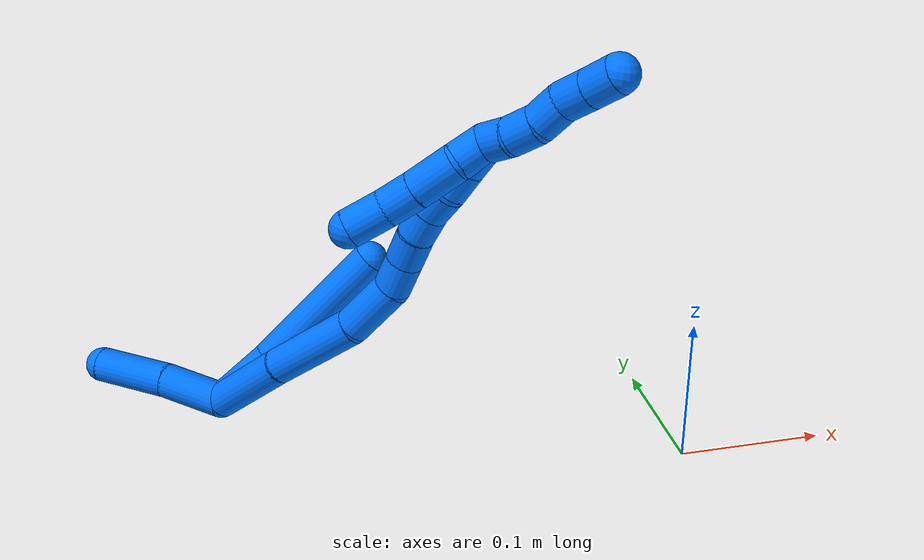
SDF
<sdf version="1.7">
 <world name="default">
  <model name="14">
   <static>0</static>
   <link name="14">
    <collision name="collision-cylinder-e_1_2_8">
     <pose>0.015268 0.006304 0.015556 -0.385005 0.738118 -0.150495</pose>
     <geometry><cylinder><radius>0.0125</radius><length>0.045381</length></cylinder></geometry>
     <surface>
      <friction><ode><mu>1.16</mu><mu2>1.16</mu2><slip1>0</slip1><slip2>0</slip2></ode></friction>
      <contact><ode><kp>1e+06</kp><kd>1</kd><max_vel>0</max_vel><min_depth>0.001</min_depth></ode></contact>
     </surface>
    </collision>
    <visual name="visual-cylinder-e_1_2_8">
     <pose>0.015268 0.006304 0.015556 -0.385005 0.738118 -0.150495</pose>
     <geometry><cylinder><radius>0.0125</radius><length>0.045381</length></cylinder></geometry>
     <material><ambient>0 0.462745 1 1</ambient></material>
    </visual>
    <collision name="collision-cylinder-e_2_8_6">
     <pose>0.061583 0.015494 0.073113 -0.06861 0.635426 -0.02257</pose>
     <geometry><cylinder><radius>0.0125</radius><length>0.104619</length></cylinder></geometry>
     <surface>
      <friction><ode><mu>1.16</mu><mu2>1.16</mu2><slip1>0</slip1><slip2>0</slip2></ode></friction>
      <contact><ode><kp>1e+06</kp><kd>1</kd><max_vel>0</max_vel><min_depth>0.001</min_depth></ode></contact>
     </surface>
    </collision>
    <visual name="visual-cylinder-e_2_8_6">
     <pose>0.061583 0.015494 0.073113 -0.06861 0.635426 -0.02257</pose>
     <geometry><cylinder><radius>0.0125</radius><length>0.104619</length></cylinder></geometry>
     <material><ambient>0 0.462745 1 1</ambient></material>
    </visual>
    <collision name="collision-cylinder-e_1_2_9">
     <pose>-0.021033 0.009379 0.000275 -1.54152 -1.15119 1.12461</pose>
     <geometry><cylinder><radius>0.0125</radius><length>0.046063</length></cylinder></geometry>
     <surface>
      <friction><ode><mu>1.16</mu><mu2>1.16</mu2><slip1>0</slip1><slip2>0</slip2></ode></friction>
      <contact><ode><kp>1e+06</kp><kd>1</kd><max_vel>0</max_vel><min_depth>0.001</min_depth></ode></contact>
     </surface>
    </collision>
    <visual name="visual-cylinder-e_1_2_9">
     <pose>-0.021033 0.009379 0.000275 -1.54152 -1.15119 1.12461</pose>
     <geometry><cylinder><radius>0.0125</radius><length>0.046063</length></cylinder></geometry>
     <material><ambient>0 0.462745 1 1</ambient></material>
    </visual>
    <collision name="collision-cylinder-e_2_9_5">
     <pose>-0.066907 0.029066 -0.00146 -1.76327 -1.17082 1.35508</pose>
     <geometry><cylinder><radius>0.0125</radius><length>0.053937</length></cylinder></geometry>
     <surface>
      <friction><ode><mu>1.16</mu><mu2>1.16</mu2><slip1>0</slip1><slip2>0</slip2></ode></friction>
      <contact><ode><kp>1e+06</kp><kd>1</kd><max_vel>0</max_vel><min_depth>0.001</min_depth></ode></contact>
     </surface>
    </collision>
    <visual name="visual-cylinder-e_2_9_5">
     <pose>-0.066907 0.029066 -0.00146 -1.76327 -1.17082 1.35508</pose>
     <geometry><cylinder><radius>0.0125</radius><length>0.053937</length></cylinder></geometry>
     <material><ambient>0 0.462745 1 1</ambient></material>
    </visual>
    <collision name="collision-cylinder-e_1_2_10">
     <pose>0.019488 -0.011671 0.022836 0.472457 0.64982 0.16182</pose>
     <geometry><cylinder><radius>0.0125</radius><length>0.06442</length></cylinder></geometry>
     <surface>
      <friction><ode><mu>1.16</mu><mu2>1.16</mu2><slip1>0</slip1><slip2>0</slip2></ode></friction>
      <contact><ode><kp>1e+06</kp><kd>1</kd><max_vel>0</max_vel><min_depth>0.001</min_depth></ode></contact>
     </surface>
    </collision>
    <visual name="visual-cylinder-e_1_2_10">
     <pose>0.019488 -0.011671 0.022836 0.472457 0.64982 0.16182</pose>
     <geometry><cylinder><radius>0.0125</radius><length>0.06442</length></cylinder></geometry>
     <material><ambient>0 0.462745 1 1</ambient></material>
    </visual>
    <collision name="collision-cylinder-e_2_10_11">
     <pose>0.062148 -0.033512 0.069194 0.4081 0.735103 0.15902</pose>
     <geometry><cylinder><radius>0.0125</radius><length>0.069098</length></cylinder></geometry>
     <surface>
      <friction><ode><mu>1.16</mu><mu2>1.16</mu2><slip1>0</slip1><slip2>0</slip2></ode></friction>
      <contact><ode><kp>1e+06</kp><kd>1</kd><max_vel>0</max_vel><min_depth>0.001</min_depth></ode></contact>
     </surface>
    </collision>
    <visual name="visual-cylinder-e_2_10_11">
     <pose>0.062148 -0.033512 0.069194 0.4081 0.735103 0.15902</pose>
     <geometry><cylinder><radius>0.0125</radius><length>0.069098</length></cylinder></geometry>
     <material><ambient>0 0.462745 1 1</ambient></material>
    </visual>
    <collision name="collision-cylinder-e_3_11_12">
     <pose>0.096523 -0.046758 0.109717 0.178968 0.575384 0.053086</pose>
     <geometry><cylinder><radius>0.0125</radius><length>0.041183</length></cylinder></geometry>
     <surface>
      <friction><ode><mu>1.16</mu><mu2>1.16</mu2><slip1>0</slip1><slip2>0</slip2></ode></friction>
      <contact><ode><kp>1e+06</kp><kd>1</kd><max_vel>0</max_vel><min_depth>0.001</min_depth></ode></contact>
     </surface>
    </collision>
    <visual name="visual-cylinder-e_3_11_12">
     <pose>0.096523 -0.046758 0.109717 0.178968 0.575384 0.053086</pose>
     <geometry><cylinder><radius>0.0125</radius><length>0.041183</length></cylinder></geometry>
     <material><ambient>0 0.462745 1 1</ambient></material>
    </visual>
    <collision name="collision-cylinder-e_4_12_13">
     <pose>0.110454 -0.051331 0.137554 0.137339 0.244153 0.016876</pose>
     <geometry><cylinder><radius>0.0125</radius><length>0.022549</length></cylinder></geometry>
     <surface>
      <friction><ode><mu>1.16</mu><mu2>1.16</mu2><slip1>0</slip1><slip2>0</slip2></ode></friction>
      <contact><ode><kp>1e+06</kp><kd>1</kd><max_vel>0</max_vel><min_depth>0.001</min_depth></ode></contact>
     </surface>
    </collision>
    <visual name="visual-cylinder-e_4_12_13">
     <pose>0.110454 -0.051331 0.137554 0.137339 0.244153 0.016876</pose>
     <geometry><cylinder><radius>0.0125</radius><length>0.022549</length></cylinder></geometry>
     <material><ambient>0 0.462745 1 1</ambient></material>
    </visual>
    <collision name="collision-cylinder-e_5_13_14">
     <pose>0.115471 -0.055779 0.158787 0.276512 0.208957 0.029179</pose>
     <geometry><cylinder><radius>0.0125</radius><length>0.022093</length></cylinder></geometry>
     <surface>
      <friction><ode><mu>1.16</mu><mu2>1.16</mu2><slip1>0</slip1><slip2>0</slip2></ode></friction>
      <contact><ode><kp>1e+06</kp><kd>1</kd><max_vel>0</max_vel><min_depth>0.001</min_depth></ode></contact>
     </surface>
    </collision>
    <visual name="visual-cylinder-e_5_13_14">
     <pose>0.115471 -0.055779 0.158787 0.276512 0.208957 0.029179</pose>
     <geometry><cylinder><radius>0.0125</radius><length>0.022093</length></cylinder></geometry>
     <material><ambient>0 0.462745 1 1</ambient></material>
    </visual>
    <collision name="collision-cylinder-e_6_14_15">
     <pose>0.120874 -0.060779 0.17851 0.216406 0.315018 0.034502</pose>
     <geometry><cylinder><radius>0.0125</radius><length>0.020089</length></cylinder></geometry>
     <surface>
      <friction><ode><mu>1.16</mu><mu2>1.16</mu2><slip1>0</slip1><slip2>0</slip2></ode></friction>
      <contact><ode><kp>1e+06</kp><kd>1</kd><max_vel>0</max_vel><min_depth>0.001</min_depth></ode></contact>
     </surface>
    </collision>
    <visual name="visual-cylinder-e_6_14_15">
     <pose>0.120874 -0.060779 0.17851 0.216406 0.315018 0.034502</pose>
     <geometry><cylinder><radius>0.0125</radius><length>0.020089</length></cylinder></geometry>
     <material><ambient>0 0.462745 1 1</ambient></material>
    </visual>
    <collision name="collision-cylinder-e_7_15_16">
     <pose>0.128262 -0.066381 0.196488 0.389555 0.42882 0.085865</pose>
     <geometry><cylinder><radius>0.0125</radius><length>0.020565</length></cylinder></geometry>
     <surface>
      <friction><ode><mu>1.16</mu><mu2>1.16</mu2><slip1>0</slip1><slip2>0</slip2></ode></friction>
      <contact><ode><kp>1e+06</kp><kd>1</kd><max_vel>0</max_vel><min_depth>0.001</min_depth></ode></contact>
     </surface>
    </collision>
    <visual name="visual-cylinder-e_7_15_16">
     <pose>0.128262 -0.066381 0.196488 0.389555 0.42882 0.085865</pose>
     <geometry><cylinder><radius>0.0125</radius><length>0.020565</length></cylinder></geometry>
     <material><ambient>0 0.462745 1 1</ambient></material>
    </visual>
    <collision name="collision-cylinder-e_8_16_17">
     <pose>0.136966 -0.070868 0.214057 0.104525 0.458721 0.024424</pose>
     <geometry><cylinder><radius>0.0125</radius><length>0.02</length></cylinder></geometry>
     <surface>
      <friction><ode><mu>1.16</mu><mu2>1.16</mu2><slip1>0</slip1><slip2>0</slip2></ode></friction>
      <contact><ode><kp>1e+06</kp><kd>1</kd><max_vel>0</max_vel><min_depth>0.001</min_depth></ode></contact>
     </surface>
    </collision>
    <visual name="visual-cylinder-e_8_16_17">
     <pose>0.136966 -0.070868 0.214057 0.104525 0.458721 0.024424</pose>
     <geometry><cylinder><radius>0.0125</radius><length>0.02</length></cylinder></geometry>
     <material><ambient>0 0.462745 1 1</ambient></material>
    </visual>
    <collision name="collision-cylinder-e_9_17_1">
     <pose>0.145629 -0.074106 0.231737 0.256848 0.437243 0.057365</pose>
     <geometry><cylinder><radius>0.0125</radius><length>0.020003</length></cylinder></geometry>
     <surface>
      <friction><ode><mu>1.16</mu><mu2>1.16</mu2><slip1>0</slip1><slip2>0</slip2></ode></friction>
      <contact><ode><kp>1e+06</kp><kd>1</kd><max_vel>0</max_vel><min_depth>0.001</min_depth></ode></contact>
     </surface>
    </collision>
    <visual name="visual-cylinder-e_9_17_1">
     <pose>0.145629 -0.074106 0.231737 0.256848 0.437243 0.057365</pose>
     <geometry><cylinder><radius>0.0125</radius><length>0.020003</length></cylinder></geometry>
     <material><ambient>0 0.462745 1 1</ambient></material>
    </visual>
    <collision name="collision-cylinder-e_1_1_18">
     <pose>0.142177 -0.078128 0.23409 2.87936 -0.858531 -2.5806</pose>
     <geometry><cylinder><radius>0.0125</radius><length>0.02031</length></cylinder></geometry>
     <surface>
      <friction><ode><mu>1.16</mu><mu2>1.16</mu2><slip1>0</slip1><slip2>0</slip2></ode></friction>
      <contact><ode><kp>1e+06</kp><kd>1</kd><max_vel>0</max_vel><min_depth>0.001</min_depth></ode></contact>
     </surface>
    </collision>
    <visual name="visual-cylinder-e_1_1_18">
     <pose>0.142177 -0.078128 0.23409 2.87936 -0.858531 -2.5806</pose>
     <geometry><cylinder><radius>0.0125</radius><length>0.02031</length></cylinder></geometry>
     <material><ambient>0 0.462745 1 1</ambient></material>
    </visual>
    <collision name="collision-cylinder-e_2_18_19">
     <pose>0.123707 -0.078535 0.21694 -3.01993 -0.783722 2.84891</pose>
     <geometry><cylinder><radius>0.0125</radius><length>0.030552</length></cylinder></geometry>
     <surface>
      <friction><ode><mu>1.16</mu><mu2>1.16</mu2><slip1>0</slip1><slip2>0</slip2></ode></friction>
      <contact><ode><kp>1e+06</kp><kd>1</kd><max_vel>0</max_vel><min_depth>0.001</min_depth></ode></contact>
     </surface>
    </collision>
    <visual name="visual-cylinder-e_2_18_19">
     <pose>0.123707 -0.078535 0.21694 -3.01993 -0.783722 2.84891</pose>
     <geometry><cylinder><radius>0.0125</radius><length>0.030552</length></cylinder></geometry>
     <material><ambient>0 0.462745 1 1</ambient></material>
    </visual>
    <collision name="collision-cylinder-e_3_19_20">
     <pose>0.10467 -0.07599 0.198602 -2.98083 -0.820273 2.7752</pose>
     <geometry><cylinder><radius>0.0125</radius><length>0.022572</length></cylinder></geometry>
     <surface>
      <friction><ode><mu>1.16</mu><mu2>1.16</mu2><slip1>0</slip1><slip2>0</slip2></ode></friction>
      <contact><ode><kp>1e+06</kp><kd>1</kd><max_vel>0</max_vel><min_depth>0.001</min_depth></ode></contact>
     </surface>
    </collision>
    <visual name="visual-cylinder-e_3_19_20">
     <pose>0.10467 -0.07599 0.198602 -2.98083 -0.820273 2.7752</pose>
     <geometry><cylinder><radius>0.0125</radius><length>0.022572</length></cylinder></geometry>
     <material><ambient>0 0.462745 1 1</ambient></material>
    </visual>
    <collision name="collision-cylinder-e_4_20_4">
     <pose>0.085754 -0.075756 0.183146 3.01521 -0.931762 -2.89121</pose>
     <geometry><cylinder><radius>0.0125</radius><length>0.026565</length></cylinder></geometry>
     <surface>
      <friction><ode><mu>1.16</mu><mu2>1.16</mu2><slip1>0</slip1><slip2>0</slip2></ode></friction>
      <contact><ode><kp>1e+06</kp><kd>1</kd><max_vel>0</max_vel><min_depth>0.001</min_depth></ode></contact>
     </surface>
    </collision>
    <visual name="visual-cylinder-e_4_20_4">
     <pose>0.085754 -0.075756 0.183146 3.01521 -0.931762 -2.89121</pose>
     <geometry><cylinder><radius>0.0125</radius><length>0.026565</length></cylinder></geometry>
     <material><ambient>0 0.462745 1 1</ambient></material>
    </visual>
    <collision name="collision-cylinder-e_1_1_21">
     <pose>0.156517 -0.08204 0.2454 0.854841 0.727953 0.343625</pose>
     <geometry><cylinder><radius>0.0125</radius><length>0.02</length></cylinder></geometry>
     <surface>
      <friction><ode><mu>1.16</mu><mu2>1.16</mu2><slip1>0</slip1><slip2>0</slip2></ode></friction>
      <contact><ode><kp>1e+06</kp><kd>1</kd><max_vel>0</max_vel><min_depth>0.001</min_depth></ode></contact>
     </surface>
    </collision>
    <visual name="visual-cylinder-e_1_1_21">
     <pose>0.156517 -0.08204 0.2454 0.854841 0.727953 0.343625</pose>
     <geometry><cylinder><radius>0.0125</radius><length>0.02</length></cylinder></geometry>
     <material><ambient>0 0.462745 1 1</ambient></material>
    </visual>
    <collision name="collision-cylinder-e_2_21_22">
     <pose>0.17014 -0.091422 0.256413 0.550268 0.771105 0.228151</pose>
     <geometry><cylinder><radius>0.0125</radius><length>0.02</length></cylinder></geometry>
     <surface>
      <friction><ode><mu>1.16</mu><mu2>1.16</mu2><slip1>0</slip1><slip2>0</slip2></ode></friction>
      <contact><ode><kp>1e+06</kp><kd>1</kd><max_vel>0</max_vel><min_depth>0.001</min_depth></ode></contact>
     </surface>
    </collision>
    <visual name="visual-cylinder-e_2_21_22">
     <pose>0.17014 -0.091422 0.256413 0.550268 0.771105 0.228151</pose>
     <geometry><cylinder><radius>0.0125</radius><length>0.02</length></cylinder></geometry>
     <material><ambient>0 0.462745 1 1</ambient></material>
    </visual>
    <collision name="collision-cylinder-e_3_22_23">
     <pose>0.18274 -0.097286 0.270515 0.25867 0.598125 0.080155</pose>
     <geometry><cylinder><radius>0.0125</radius><length>0.02</length></cylinder></geometry>
     <surface>
      <friction><ode><mu>1.16</mu><mu2>1.16</mu2><slip1>0</slip1><slip2>0</slip2></ode></friction>
      <contact><ode><kp>1e+06</kp><kd>1</kd><max_vel>0</max_vel><min_depth>0.001</min_depth></ode></contact>
     </surface>
    </collision>
    <visual name="visual-cylinder-e_3_22_23">
     <pose>0.18274 -0.097286 0.270515 0.25867 0.598125 0.080155</pose>
     <geometry><cylinder><radius>0.0125</radius><length>0.02</length></cylinder></geometry>
     <material><ambient>0 0.462745 1 1</ambient></material>
    </visual>
    <collision name="collision-cylinder-e_4_23_24">
     <pose>0.19469 -0.104068 0.28469 0.646466 0.684033 0.23739</pose>
     <geometry><cylinder><radius>0.0125</radius><length>0.02</length></cylinder></geometry>
     <surface>
      <friction><ode><mu>1.16</mu><mu2>1.16</mu2><slip1>0</slip1><slip2>0</slip2></ode></friction>
      <contact><ode><kp>1e+06</kp><kd>1</kd><max_vel>0</max_vel><min_depth>0.001</min_depth></ode></contact>
     </surface>
    </collision>
    <visual name="visual-cylinder-e_4_23_24">
     <pose>0.19469 -0.104068 0.28469 0.646466 0.684033 0.23739</pose>
     <geometry><cylinder><radius>0.0125</radius><length>0.02</length></cylinder></geometry>
     <material><ambient>0 0.462745 1 1</ambient></material>
    </visual>
    <collision name="collision-cylinder-e_5_24_3">
     <pose>0.207149 -0.11344 0.297217 0.638198 0.661015 0.225745</pose>
     <geometry><cylinder><radius>0.0125</radius><length>0.02</length></cylinder></geometry>
     <surface>
      <friction><ode><mu>1.16</mu><mu2>1.16</mu2><slip1>0</slip1><slip2>0</slip2></ode></friction>
      <contact><ode><kp>1e+06</kp><kd>1</kd><max_vel>0</max_vel><min_depth>0.001</min_depth></ode></contact>
     </surface>
    </collision>
    <visual name="visual-cylinder-e_5_24_3">
     <pose>0.207149 -0.11344 0.297217 0.638198 0.661015 0.225745</pose>
     <geometry><cylinder><radius>0.0125</radius><length>0.02</length></cylinder></geometry>
     <material><ambient>0 0.462745 1 1</ambient></material>
    </visual>
    <collision name="collision-sphere-3">
     <pose>0.213288 -0.118142 0.303557 0 -0 0</pose>
     <geometry><sphere><radius>0.0125</radius></sphere></geometry>
     <surface>
      <friction><ode><mu>1.16</mu><mu2>1.16</mu2><slip1>0</slip1><slip2>0</slip2></ode></friction>
      <contact><ode><kp>1e+06</kp><kd>1</kd><max_vel>0</max_vel><min_depth>0.001</min_depth></ode></contact>
     </surface>
    </collision>
    <visual name="visual-sphere-3">
     <pose>0.213288 -0.118142 0.303557 0 -0 0</pose>
     <geometry><sphere><radius>0.0125</radius></sphere></geometry>
     <material><ambient>0 0.462745 1 1</ambient></material>
    </visual>
    <collision name="collision-sphere-24">
     <pose>0.201009 -0.108737 0.290877 0 -0 0</pose>
     <geometry><sphere><radius>0.0125</radius></sphere></geometry>
     <surface>
      <friction><ode><mu>1.16</mu><mu2>1.16</mu2><slip1>0</slip1><slip2>0</slip2></ode></friction>
      <contact><ode><kp>1e+06</kp><kd>1</kd><max_vel>0</max_vel><min_depth>0.001</min_depth></ode></contact>
     </surface>
    </collision>
    <visual name="visual-sphere-24">
     <pose>0.201009 -0.108737 0.290877 0 -0 0</pose>
     <geometry><sphere><radius>0.0125</radius></sphere></geometry>
     <material><ambient>0 0.462745 1 1</ambient></material>
    </visual>
    <collision name="collision-sphere-23">
     <pose>0.188371 -0.0994 0.278504 0 -0 0</pose>
     <geometry><sphere><radius>0.0125</radius></sphere></geometry>
     <surface>
      <friction><ode><mu>1.16</mu><mu2>1.16</mu2><slip1>0</slip1><slip2>0</slip2></ode></friction>
      <contact><ode><kp>1e+06</kp><kd>1</kd><max_vel>0</max_vel><min_depth>0.001</min_depth></ode></contact>
     </surface>
    </collision>
    <visual name="visual-sphere-23">
     <pose>0.188371 -0.0994 0.278504 0 -0 0</pose>
     <geometry><sphere><radius>0.0125</radius></sphere></geometry>
     <material><ambient>0 0.462745 1 1</ambient></material>
    </visual>
    <collision name="collision-sphere-22">
     <pose>0.177109 -0.095172 0.262526 0 -0 0</pose>
     <geometry><sphere><radius>0.0125</radius></sphere></geometry>
     <surface>
      <friction><ode><mu>1.16</mu><mu2>1.16</mu2><slip1>0</slip1><slip2>0</slip2></ode></friction>
      <contact><ode><kp>1e+06</kp><kd>1</kd><max_vel>0</max_vel><min_depth>0.001</min_depth></ode></contact>
     </surface>
    </collision>
    <visual name="visual-sphere-22">
     <pose>0.177109 -0.095172 0.262526 0 -0 0</pose>
     <geometry><sphere><radius>0.0125</radius></sphere></geometry>
     <material><ambient>0 0.462745 1 1</ambient></material>
    </visual>
    <collision name="collision-sphere-21">
     <pose>0.163171 -0.087672 0.2503 0 -0 0</pose>
     <geometry><sphere><radius>0.0125</radius></sphere></geometry>
     <surface>
      <friction><ode><mu>1.16</mu><mu2>1.16</mu2><slip1>0</slip1><slip2>0</slip2></ode></friction>
      <contact><ode><kp>1e+06</kp><kd>1</kd><max_vel>0</max_vel><min_depth>0.001</min_depth></ode></contact>
     </surface>
    </collision>
    <visual name="visual-sphere-21">
     <pose>0.163171 -0.087672 0.2503 0 -0 0</pose>
     <geometry><sphere><radius>0.0125</radius></sphere></geometry>
     <material><ambient>0 0.462745 1 1</ambient></material>
    </visual>
    <collision name="collision-sphere-4">
     <pose>0.075093 -0.076755 0.175287 0 -0 0</pose>
     <geometry><sphere><radius>0.0125</radius></sphere></geometry>
     <surface>
      <friction><ode><mu>1.16</mu><mu2>1.16</mu2><slip1>0</slip1><slip2>0</slip2></ode></friction>
      <contact><ode><kp>1e+06</kp><kd>1</kd><max_vel>0</max_vel><min_depth>0.001</min_depth></ode></contact>
     </surface>
    </collision>
    <visual name="visual-sphere-4">
     <pose>0.075093 -0.076755 0.175287 0 -0 0</pose>
     <geometry><sphere><radius>0.0125</radius></sphere></geometry>
     <material><ambient>0 0.462745 1 1</ambient></material>
    </visual>
    <collision name="collision-sphere-20">
     <pose>0.096416 -0.074758 0.191004 0 -0 0</pose>
     <geometry><sphere><radius>0.0125</radius></sphere></geometry>
     <surface>
      <friction><ode><mu>1.16</mu><mu2>1.16</mu2><slip1>0</slip1><slip2>0</slip2></ode></friction>
      <contact><ode><kp>1e+06</kp><kd>1</kd><max_vel>0</max_vel><min_depth>0.001</min_depth></ode></contact>
     </surface>
    </collision>
    <visual name="visual-sphere-20">
     <pose>0.096416 -0.074758 0.191004 0 -0 0</pose>
     <geometry><sphere><radius>0.0125</radius></sphere></geometry>
     <material><ambient>0 0.462745 1 1</ambient></material>
    </visual>
    <collision name="collision-sphere-10">
     <pose>0.038977 -0.023341 0.045672 0 -0 0</pose>
     <geometry><sphere><radius>0.0125</radius></sphere></geometry>
     <surface>
      <friction><ode><mu>1.16</mu><mu2>1.16</mu2><slip1>0</slip1><slip2>0</slip2></ode></friction>
      <contact><ode><kp>1e+06</kp><kd>1</kd><max_vel>0</max_vel><min_depth>0.001</min_depth></ode></contact>
     </surface>
    </collision>
    <visual name="visual-sphere-10">
     <pose>0.038977 -0.023341 0.045672 0 -0 0</pose>
     <geometry><sphere><radius>0.0125</radius></sphere></geometry>
     <material><ambient>0 0.462745 1 1</ambient></material>
    </visual>
    <collision name="collision-sphere-5">
     <pose>-0.091747 0.039373 -0.003468 0 -0 0</pose>
     <geometry><sphere><radius>0.0125</radius></sphere></geometry>
     <surface>
      <friction><ode><mu>1.16</mu><mu2>1.16</mu2><slip1>0</slip1><slip2>0</slip2></ode></friction>
      <contact><ode><kp>1e+06</kp><kd>1</kd><max_vel>0</max_vel><min_depth>0.001</min_depth></ode></contact>
     </surface>
    </collision>
    <visual name="visual-sphere-5">
     <pose>-0.091747 0.039373 -0.003468 0 -0 0</pose>
     <geometry><sphere><radius>0.0125</radius></sphere></geometry>
     <material><ambient>0 0.462745 1 1</ambient></material>
    </visual>
    <collision name="collision-sphere-6">
     <pose>0.09263 0.01838 0.115114 0 -0 0</pose>
     <geometry><sphere><radius>0.0125</radius></sphere></geometry>
     <surface>
      <friction><ode><mu>1.16</mu><mu2>1.16</mu2><slip1>0</slip1><slip2>0</slip2></ode></friction>
      <contact><ode><kp>1e+06</kp><kd>1</kd><max_vel>0</max_vel><min_depth>0.001</min_depth></ode></contact>
     </surface>
    </collision>
    <visual name="visual-sphere-6">
     <pose>0.09263 0.01838 0.115114 0 -0 0</pose>
     <geometry><sphere><radius>0.0125</radius></sphere></geometry>
     <material><ambient>0 0.462745 1 1</ambient></material>
    </visual>
    <collision name="collision-sphere-9">
     <pose>-0.042067 0.018758 0.000549 0 -0 0</pose>
     <geometry><sphere><radius>0.0125</radius></sphere></geometry>
     <surface>
      <friction><ode><mu>1.16</mu><mu2>1.16</mu2><slip1>0</slip1><slip2>0</slip2></ode></friction>
      <contact><ode><kp>1e+06</kp><kd>1</kd><max_vel>0</max_vel><min_depth>0.001</min_depth></ode></contact>
     </surface>
    </collision>
    <visual name="visual-sphere-9">
     <pose>-0.042067 0.018758 0.000549 0 -0 0</pose>
     <geometry><sphere><radius>0.0125</radius></sphere></geometry>
     <material><ambient>0 0.462745 1 1</ambient></material>
    </visual>
    <collision name="collision-sphere-2">
     <geometry><sphere><radius>0.0125</radius></sphere></geometry>
     <surface>
      <friction><ode><mu>1.16</mu><mu2>1.16</mu2><slip1>0</slip1><slip2>0</slip2></ode></friction>
      <contact><ode><kp>1e+06</kp><kd>1</kd><max_vel>0</max_vel><min_depth>0.001</min_depth></ode></contact>
     </surface>
    </collision>
    <visual name="visual-sphere-2">
     <geometry><sphere><radius>0.0125</radius></sphere></geometry>
     <material><ambient>0 0.462745 1 1</ambient></material>
    </visual>
    <collision name="collision-sphere-19">
     <pose>0.112924 -0.077222 0.2062 0 -0 0</pose>
     <geometry><sphere><radius>0.0125</radius></sphere></geometry>
     <surface>
      <friction><ode><mu>1.16</mu><mu2>1.16</mu2><slip1>0</slip1><slip2>0</slip2></ode></friction>
      <contact><ode><kp>1e+06</kp><kd>1</kd><max_vel>0</max_vel><min_depth>0.001</min_depth></ode></contact>
     </surface>
    </collision>
    <visual name="visual-sphere-19">
     <pose>0.112924 -0.077222 0.2062 0 -0 0</pose>
     <geometry><sphere><radius>0.0125</radius></sphere></geometry>
     <material><ambient>0 0.462745 1 1</ambient></material>
    </visual>
    <collision name="collision-sphere-8">
     <pose>0.030536 0.012608 0.031112 0 -0 0</pose>
     <geometry><sphere><radius>0.0125</radius></sphere></geometry>
     <surface>
      <friction><ode><mu>1.16</mu><mu2>1.16</mu2><slip1>0</slip1><slip2>0</slip2></ode></friction>
      <contact><ode><kp>1e+06</kp><kd>1</kd><max_vel>0</max_vel><min_depth>0.001</min_depth></ode></contact>
     </surface>
    </collision>
    <visual name="visual-sphere-8">
     <pose>0.030536 0.012608 0.031112 0 -0 0</pose>
     <geometry><sphere><radius>0.0125</radius></sphere></geometry>
     <material><ambient>0 0.462745 1 1</ambient></material>
    </visual>
    <collision name="collision-sphere-11">
     <pose>0.085318 -0.043682 0.092717 0 -0 0</pose>
     <geometry><sphere><radius>0.0125</radius></sphere></geometry>
     <surface>
      <friction><ode><mu>1.16</mu><mu2>1.16</mu2><slip1>0</slip1><slip2>0</slip2></ode></friction>
      <contact><ode><kp>1e+06</kp><kd>1</kd><max_vel>0</max_vel><min_depth>0.001</min_depth></ode></contact>
     </surface>
    </collision>
    <visual name="visual-sphere-11">
     <pose>0.085318 -0.043682 0.092717 0 -0 0</pose>
     <geometry><sphere><radius>0.0125</radius></sphere></geometry>
     <material><ambient>0 0.462745 1 1</ambient></material>
    </visual>
    <collision name="collision-sphere-12">
     <pose>0.107729 -0.049833 0.126717 0 -0 0</pose>
     <geometry><sphere><radius>0.0125</radius></sphere></geometry>
     <surface>
      <friction><ode><mu>1.16</mu><mu2>1.16</mu2><slip1>0</slip1><slip2>0</slip2></ode></friction>
      <contact><ode><kp>1e+06</kp><kd>1</kd><max_vel>0</max_vel><min_depth>0.001</min_depth></ode></contact>
     </surface>
    </collision>
    <visual name="visual-sphere-12">
     <pose>0.107729 -0.049833 0.126717 0 -0 0</pose>
     <geometry><sphere><radius>0.0125</radius></sphere></geometry>
     <material><ambient>0 0.462745 1 1</ambient></material>
    </visual>
    <collision name="collision-sphere-13">
     <pose>0.113179 -0.052828 0.148391 0 -0 0</pose>
     <geometry><sphere><radius>0.0125</radius></sphere></geometry>
     <surface>
      <friction><ode><mu>1.16</mu><mu2>1.16</mu2><slip1>0</slip1><slip2>0</slip2></ode></friction>
      <contact><ode><kp>1e+06</kp><kd>1</kd><max_vel>0</max_vel><min_depth>0.001</min_depth></ode></contact>
     </surface>
    </collision>
    <visual name="visual-sphere-13">
     <pose>0.113179 -0.052828 0.148391 0 -0 0</pose>
     <geometry><sphere><radius>0.0125</radius></sphere></geometry>
     <material><ambient>0 0.462745 1 1</ambient></material>
    </visual>
    <collision name="collision-sphere-14">
     <pose>0.117762 -0.058729 0.169182 0 -0 0</pose>
     <geometry><sphere><radius>0.0125</radius></sphere></geometry>
     <surface>
      <friction><ode><mu>1.16</mu><mu2>1.16</mu2><slip1>0</slip1><slip2>0</slip2></ode></friction>
      <contact><ode><kp>1e+06</kp><kd>1</kd><max_vel>0</max_vel><min_depth>0.001</min_depth></ode></contact>
     </surface>
    </collision>
    <visual name="visual-sphere-14">
     <pose>0.117762 -0.058729 0.169182 0 -0 0</pose>
     <geometry><sphere><radius>0.0125</radius></sphere></geometry>
     <material><ambient>0 0.462745 1 1</ambient></material>
    </visual>
    <collision name="collision-sphere-15">
     <pose>0.123986 -0.06283 0.187837 0 -0 0</pose>
     <geometry><sphere><radius>0.0125</radius></sphere></geometry>
     <surface>
      <friction><ode><mu>1.16</mu><mu2>1.16</mu2><slip1>0</slip1><slip2>0</slip2></ode></friction>
      <contact><ode><kp>1e+06</kp><kd>1</kd><max_vel>0</max_vel><min_depth>0.001</min_depth></ode></contact>
     </surface>
    </collision>
    <visual name="visual-sphere-15">
     <pose>0.123986 -0.06283 0.187837 0 -0 0</pose>
     <geometry><sphere><radius>0.0125</radius></sphere></geometry>
     <material><ambient>0 0.462745 1 1</ambient></material>
    </visual>
    <collision name="collision-sphere-16">
     <pose>0.132537 -0.069933 0.205139 0 -0 0</pose>
     <geometry><sphere><radius>0.0125</radius></sphere></geometry>
     <surface>
      <friction><ode><mu>1.16</mu><mu2>1.16</mu2><slip1>0</slip1><slip2>0</slip2></ode></friction>
      <contact><ode><kp>1e+06</kp><kd>1</kd><max_vel>0</max_vel><min_depth>0.001</min_depth></ode></contact>
     </surface>
    </collision>
    <visual name="visual-sphere-16">
     <pose>0.132537 -0.069933 0.205139 0 -0 0</pose>
     <geometry><sphere><radius>0.0125</radius></sphere></geometry>
     <material><ambient>0 0.462745 1 1</ambient></material>
    </visual>
    <collision name="collision-sphere-17">
     <pose>0.141394 -0.071804 0.222974 0 -0 0</pose>
     <geometry><sphere><radius>0.0125</radius></sphere></geometry>
     <surface>
      <friction><ode><mu>1.16</mu><mu2>1.16</mu2><slip1>0</slip1><slip2>0</slip2></ode></friction>
      <contact><ode><kp>1e+06</kp><kd>1</kd><max_vel>0</max_vel><min_depth>0.001</min_depth></ode></contact>
     </surface>
    </collision>
    <visual name="visual-sphere-17">
     <pose>0.141394 -0.071804 0.222974 0 -0 0</pose>
     <geometry><sphere><radius>0.0125</radius></sphere></geometry>
     <material><ambient>0 0.462745 1 1</ambient></material>
    </visual>
    <collision name="collision-sphere-1">
     <pose>0.149864 -0.076407 0.240501 0 -0 0</pose>
     <geometry><sphere><radius>0.0125</radius></sphere></geometry>
     <surface>
      <friction><ode><mu>1.16</mu><mu2>1.16</mu2><slip1>0</slip1><slip2>0</slip2></ode></friction>
      <contact><ode><kp>1e+06</kp><kd>1</kd><max_vel>0</max_vel><min_depth>0.001</min_depth></ode></contact>
     </surface>
    </collision>
    <visual name="visual-sphere-1">
     <pose>0.149864 -0.076407 0.240501 0 -0 0</pose>
     <geometry><sphere><radius>0.0125</radius></sphere></geometry>
     <material><ambient>0 0.462745 1 1</ambient></material>
    </visual>
    <collision name="collision-sphere-18">
     <pose>0.134491 -0.079848 0.22768 0 -0 0</pose>
     <geometry><sphere><radius>0.0125</radius></sphere></geometry>
     <surface>
      <friction><ode><mu>1.16</mu><mu2>1.16</mu2><slip1>0</slip1><slip2>0</slip2></ode></friction>
      <contact><ode><kp>1e+06</kp><kd>1</kd><max_vel>0</max_vel><min_depth>0.001</min_depth></ode></contact>
     </surface>
    </collision>
    <visual name="visual-sphere-18">
     <pose>0.134491 -0.079848 0.22768 0 -0 0</pose>
     <geometry><sphere><radius>0.0125</radius></sphere></geometry>
     <material><ambient>0 0.462745 1 1</ambient></material>
    </visual>
    <inertial>
     <pose>0.076501 -0.035255 0.120038 0 -0 0</pose>
     <mass>0.75</mass>
     <inertia>
      <ixx>0.000173</ixx>
      <ixy>0</ixy>
      <ixz>0</ixz>
      <iyy>0.000224</iyy>
      <iyz>0</iyz>
      <izz>-4.9e-05</izz>
     </inertia>
    </inertial>
   </link>
   <pose>-0.304112 0.119164 0.012067 -0.044837 0.14269 -0.195215</pose>
  </model>
 </world>
</sdf>
